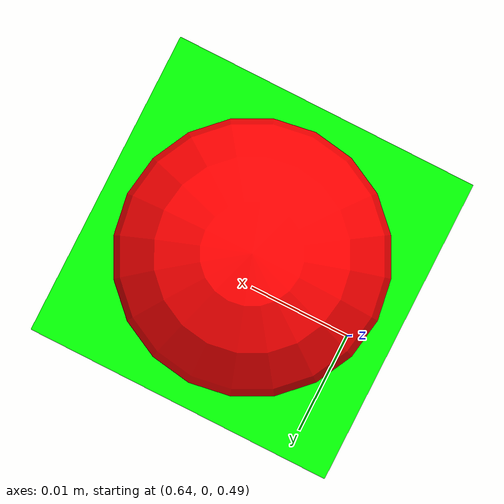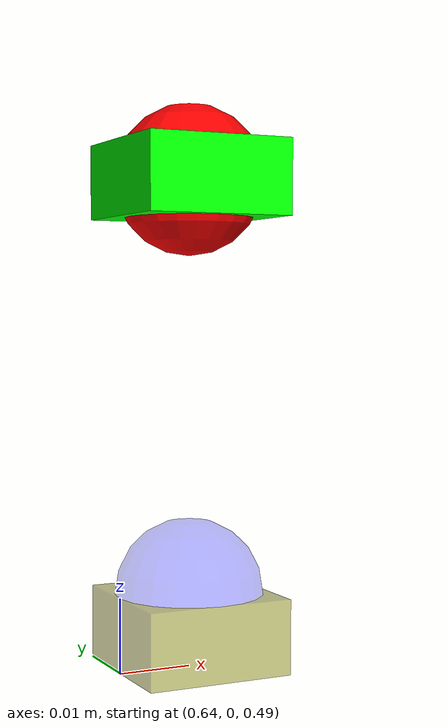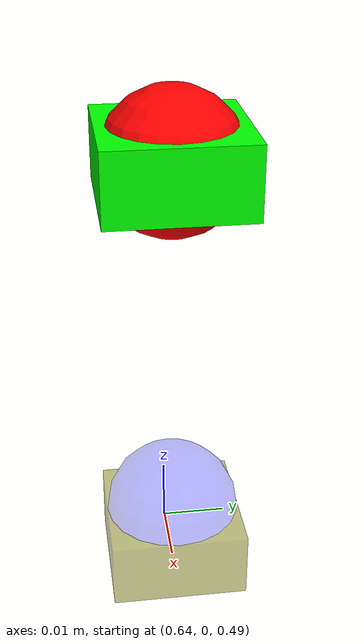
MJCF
<?xml version="1.0"?>
<mujoco model="button">
  <worldbody>
    <body name="button_base" pos="0.65 0 0.5" mocap="true">
      <!-- Base plate: 2x2x1 cm. Top surface at button_base z (local z=0). contype/conaffinity=0 -> no collision with anything. -->
      <geom type="box" name="button_body" size="0.01 0.01 0.005" pos="0 0 -0.005" condim="3" friction="1 0.03 0.003" rgba="0.5 0.5 0 0.5" contype="0" conaffinity="0" solref="0.01 1"/>
      <!-- Base site at button_base origin (= top of base plate). -->
      <site name="base_site" pos="0.0 0.0 0.0" size="0.01" rgba="0 0 1 0.3"/>
      <body name="handle">
        <!-- Slide along z, range [-0.05, 0]: 0 = unpressed (handle bottom 5 cm above base top), -0.05 = fully pressed (handle bottom touches base top). -->
        <joint name="button_slide" type="slide" axis="0 0 1" range="-0.05 0.0" limited="true" damping="5" stiffness="1000"/>
        <geom type="box" name="handle" pos="0 0 0.055" size="0.01 0.01 0.005" condim="3" friction="1 0.03 0.003" rgba="0 1 0 1" contype="1" conaffinity="1" solref="0.01 1"/>
        <!-- Object site for observations (manipulation point) at handle center. -->
        <site name="object_site" pos="0 0 0.055" size="0.01 0.01 0.01" rgba="1 0 0 1"/>
      </body>
    </body>
  </worldbody>
</mujoco>
